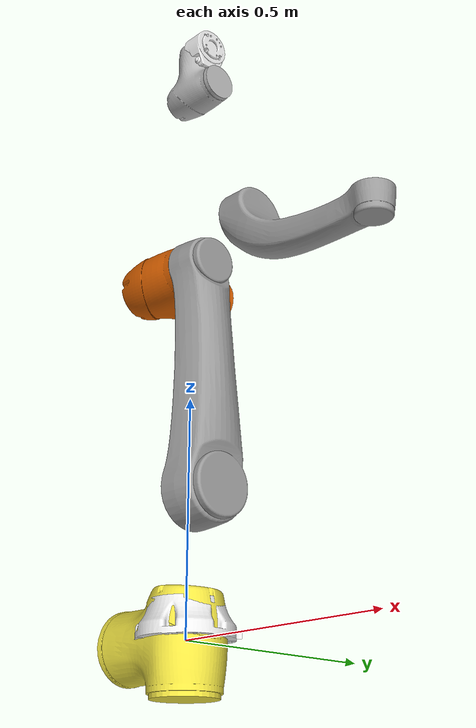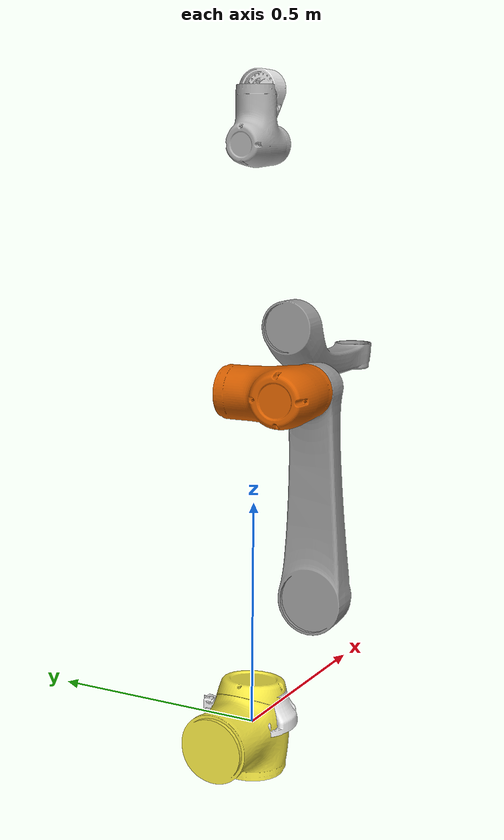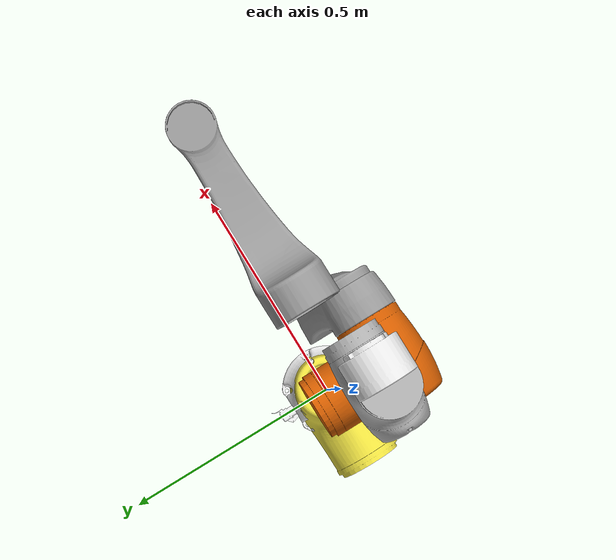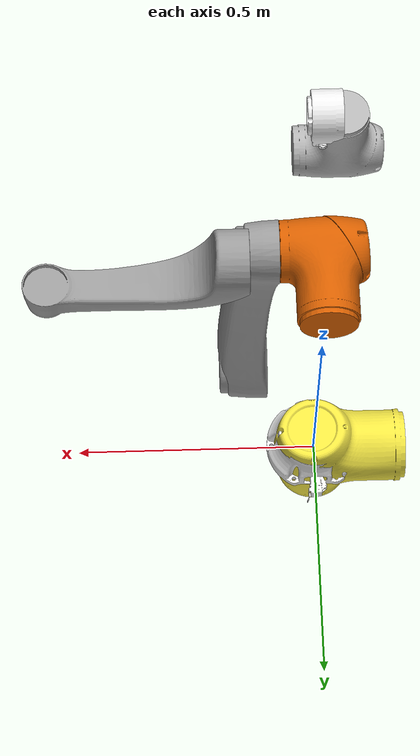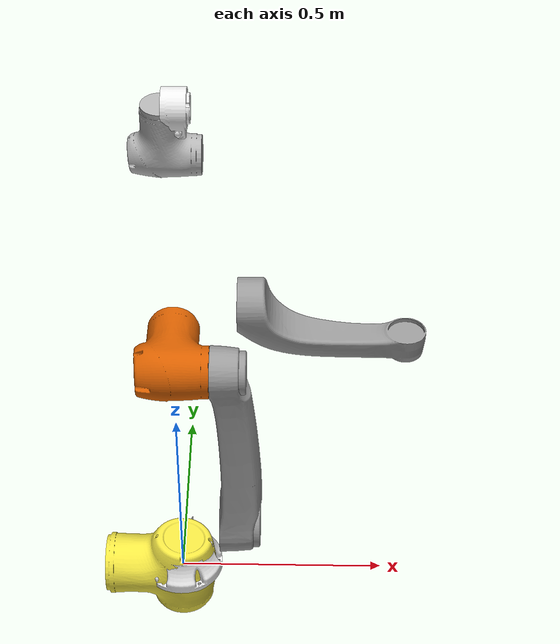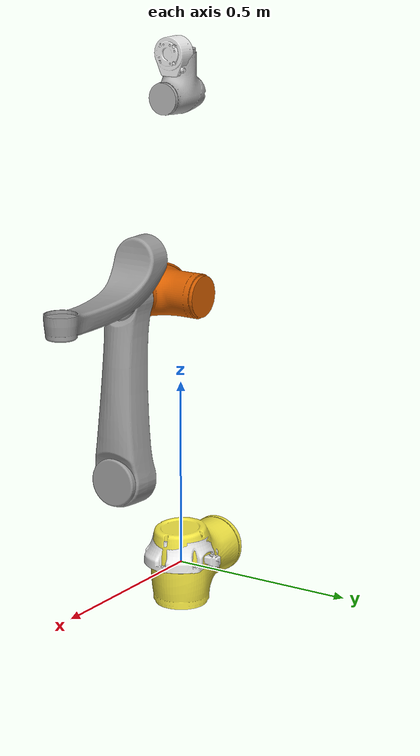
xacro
<robot
  name="elfin10" xmlns:xacro="http://www.ros.org/wiki/xacro">

  <xacro:include filename="$(find elfin_description)/urdf/materials.xacro" />

  <xacro:include filename="$(find elfin_description)/urdf/elfin_robot.gazebo" />

  <xacro:include filename="$(find elfin_description)/urdf/elfin_transmission.xacro" />

  <xacro:property name="PI" value="3.1415926535897931"/>

  <xacro:property name="density" value="3.09"/>

  <link name="world"/>

  <joint name="world_base" type="fixed">
    <origin
      xyz="0 0 0"
      rpy="0 0 0" />
    <parent
      link="world" />
    <child
      link="elfin_base_link" />
  </joint>

  <link name="elfin_base_link"/>

  <joint name="elfin_base_joint" type="fixed">
    <origin
      xyz="0 0 0"
      rpy="0 0 ${PI/2}" />
    <parent
      link="elfin_base_link" />
    <child
      link="elfin_base" />
  </joint>

  <link
    name="elfin_base">
    <inertial>
      <origin
        xyz="0.00029790659221 0.00271788312044 0.0274159041935"
        rpy="0 0 0"/>
      <mass value="${0.890680700037*density}"/>
      <inertia
      ixx="${0.00287631*density}" ixy="${1.617e-05*density}" ixz="${3.38e-06*density}"
      iyy="${0.00304792*density}" iyz="${2.79e-05*density}"
      izz="${0.00537429*density}"/>
    </inertial>
    <visual>
      <origin
        xyz="0 0 0"
        rpy="0 0 0" />
      <geometry>
        <mesh
          filename="package://elfin_description/meshes/elfin10/elfin_base.STL" />
      </geometry>
      <material
        name="metal_white"/>
    </visual>
    <collision>
      <origin
        xyz="0 0 0"
        rpy="0 0 0" />
      <geometry>
        <mesh
          filename="package://elfin_description/meshes/elfin10/elfin_base.STL" />
      </geometry>
    </collision>
  </link>
  <link
    name="elfin_link1">
    <inertial>
      <origin
        xyz="-0.0255519176997 0.195603533565 1.68999482169e-05"
        rpy="0 0 0"/>
      <mass value="${5.04797690664*density}"/>
      <inertia
      ixx="${0.03982126*density}" ixy="${0.00844769*density}" ixz="${-4.29e-06*density}"
      iyy="${0.02114179*density}" iyz="${-2.23e-06*density}"
      izz="${0.04547525*density}"/>
    </inertial>
    <visual>
      <origin
        xyz="0 0 0"
        rpy="0 0 0" />
      <geometry>
        <mesh
          filename="package://elfin_description/meshes/elfin10/elfin_link1.STL" />
      </geometry>
      <material
        name="metal"/>
    </visual>
    <collision>
      <origin
        xyz="0 0 0"
        rpy="0 0 0" />
      <geometry>
        <mesh
          filename="package://elfin_description/meshes/elfin10/elfin_link1.STL" />
      </geometry>
    </collision>
  </link>
  <joint
    name="elfin_joint1"
    type="revolute">
    <origin
      xyz="0 0 0"
      rpy="${PI/2} 0 0" />
    <parent
      link="elfin_base" />
    <child
      link="elfin_link1" />
    <axis
      xyz="0 1 0" />
    <limit
      lower="-3.14"
      upper="3.14"
      effort="420"
      velocity="1.57" />
  </joint>
  <link
    name="elfin_link2">
    <inertial>
      <origin
        xyz="-0.0589642426226 0.20968040657 -5.33587812464e-06"
        rpy="0 0 0"/>
      <mass value="${1.66596877354*density}"/>
      <inertia
      ixx="${0.052412*density}" ixy="${-0.00219612*density}" ixz="${-1.07e-06*density}"
      iyy="${0.00434323*density}" iyz="${-1.255e-05*density}"
      izz="${0.05107023*density}"/>
    </inertial>
    <visual>
      <origin
        xyz="0 0 0"
        rpy="0 0 0" />
      <geometry>
        <mesh
          filename="package://elfin_description/meshes/elfin10/elfin_link2.STL" />
      </geometry>
      <material
        name="metal_grey"/>
    </visual>
    <collision>
      <origin
        xyz="0 0 0"
        rpy="0 0 0" />
      <geometry>
        <mesh
          filename="package://elfin_description/meshes/elfin10/elfin_link2.STL" />
      </geometry>
    </collision>
  </link>
  <joint
    name="elfin_joint2"
    type="revolute">
    <origin
      xyz="-0.084469 0.26 0"
      rpy="0 0 0" />
    <parent
      link="elfin_link1" />
    <child
      link="elfin_link2" />
    <axis
      xyz="-1 0 0" />
    <limit
      lower="-2.35"
      upper="2.35"
      effort="420"
      velocity="1.57" />
  </joint>
  <link
    name="elfin_link3">
    <inertial>
      <origin
        xyz="0.0625690665762 -0.0521846187635 2.58799082907e-05"
        rpy="0 0 0"/>
      <mass value="${2.51986584925*density}"/>
      <inertia
      ixx="${0.01259396*density}" ixy="${0.00288795*density}" ixz="${-1.16e-06*density}"
      iyy="${0.00707893*density}" iyz="${-2.15e-06*density}"
      izz="${0.01493778*density}"/>
    </inertial>
    <visual>
      <origin
        xyz="0 0 0"
        rpy="0 0 0" />
      <geometry>
        <mesh
          filename="package://elfin_description/meshes/elfin10/elfin_link3.STL" />
      </geometry>
      <material
        name="metal"/>
    </visual>
    <collision>
      <origin
        xyz="0 0 0"
        rpy="0 0 0" />
      <geometry>
        <mesh
          filename="package://elfin_description/meshes/elfin10/elfin_link3.STL" />
      </geometry>
    </collision>
  </link>
  <joint
    name="elfin_joint3"
    type="revolute">
    <origin
      xyz="0 0.48 0"
      rpy="${PI} 0 0" />
    <parent
      link="elfin_link2" />
    <child
      link="elfin_link3" />
    <axis
      xyz="1 0 0" />
    <limit
      lower="-2.61"
      upper="2.61"
      effort="200"
      velocity="1.57" />
  </joint>
  <link
    name="elfin_link4">
    <inertial>
      <origin
        xyz="-0.0653325107739 0.17924183252 -8.22522528991e-06"
        rpy="0 0 0"/>
      <mass value="${0.773882513506*density}"/>
      <inertia
      ixx="${0.01260891*density}" ixy="${0.00311563*density}" ixz="${5.8e-07*density}"
      iyy="${0.00272662*density}" iyz="${-1.47e-06*density}"
      izz="${0.01371082*density}"/>
    </inertial>
    <visual>
      <origin
        xyz="0 0 0"
        rpy="0 0 0" />
      <geometry>
        <mesh
          filename="package://elfin_description/meshes/elfin10/elfin_link4.STL" />
      </geometry>
      <material
        name="metal_grey"/>
    </visual>
    <collision>
      <origin
        xyz="0 0 0"
        rpy="0 0 0" />
      <geometry>
        <mesh
          filename="package://elfin_description/meshes/elfin10/elfin_link4.STL" />
      </geometry>
    </collision>
  </link>
  <joint
    name="elfin_joint4"
    type="revolute">
    <origin
      xyz="0.084469 -0.12571 0"
      rpy="${-PI} 0 0" />
    <parent
      link="elfin_link3" />
    <child
      link="elfin_link4" />
    <axis
      xyz="0 1 0" />
    <limit
      lower="-3.14"
      upper="3.14"
      effort="200"
      velocity="1.57" />
  </joint>
  <link
    name="elfin_link5">
    <inertial>
      <origin
        xyz="-0.0174451255278 -0.0377419055039 -1.41483594707e-05"
        rpy="0 0 0"/>
      <mass value="${1.07514483832*density}"/>
      <inertia
      ixx="${0.00296619*density}" ixy="${0.00072021*density}" ixz="${7.3e-07*density}"
      iyy="${0.00182263*density}" iyz="${-3.7e-07*density}"
      izz="${0.00372855*density}"/>
    </inertial>
    <visual>
      <origin
        xyz="0 0 0"
        rpy="0 0 0" />
      <geometry>
        <mesh
          filename="package://elfin_description/meshes/elfin10/elfin_link5.STL" />
      </geometry>
      <material
        name="metal"/>
    </visual>
    <collision>
      <origin
        xyz="0 0 0"
        rpy="0 0 0" />
      <geometry>
        <mesh
          filename="package://elfin_description/meshes/elfin10/elfin_link5.STL" />
      </geometry>
    </collision>
  </link>
  <joint
    name="elfin_joint5"
    type="revolute">
    <origin
      xyz="0 0.39429 0"
      rpy="${-PI} 0 0" />
    <parent
      link="elfin_link4" />
    <child
      link="elfin_link5" />
    <axis
      xyz="1 0 0" />
    <limit
      lower="-2.56"
      upper="2.56"
      effort="69"
      velocity="1.57" />
  </joint>
  <link
    name="elfin_link6">
    <inertial>
      <origin
        xyz="0.00115745849085 0.0594966864835 0.000222299836983"
        rpy="0 0 0"/>
      <mass value="${0.184390264995*density}"/>
      <inertia
      ixx="${0.00018992*density}" ixy="${4.57e-06*density}" ixz="${-1.29e-06*density}"
      iyy="${0.0002179*density}" iyz="${8.3e-07*density}"
      izz="${0.00020144*density}"/>
    </inertial>
    <visual>
      <origin
        xyz="0 0 0"
        rpy="0 0 0" />
      <geometry>
        <mesh
          filename="package://elfin_description/meshes/elfin10/elfin_link6.STL" />
      </geometry>
      <material
        name="metal_white"/>
    </visual>
    <collision>
      <origin
        xyz="0 0 0"
        rpy="0 0 0" />
      <geometry>
        <mesh
          filename="package://elfin_description/meshes/elfin10/elfin_link6.STL" />
      </geometry>
    </collision>
  </link>
  <joint
    name="elfin_joint6"
    type="revolute">
    <origin
      xyz="0 -0.111 0"
      rpy="${PI} 0 0" />
    <parent
      link="elfin_link5" />
    <child
      link="elfin_link6" />
    <axis
      xyz="0 1 0" />
    <limit
      lower="-3.14"
      upper="3.14"
      effort="69"
      velocity="1.57" />
  </joint>

  <link name="elfin_end_link"/>

  <joint name="elfin_end_joint" type="fixed">
    <origin
      xyz="0 0.089 0"
      rpy="${-PI/2} ${-PI/2} 0" />
    <parent
      link="elfin_link6" />
    <child
      link="elfin_end_link" />
  </joint>

  <link name="elfin_dummy_gripper"/>

  <joint name="elfin_dummy_joint" type="fixed">
    <origin
      xyz="0 0.109 0"
      rpy="${-PI/2} ${-PI/2} 0" />
    <parent
      link="elfin_link6" />
    <child
      link="elfin_dummy_gripper" />
  </joint>

</robot>
